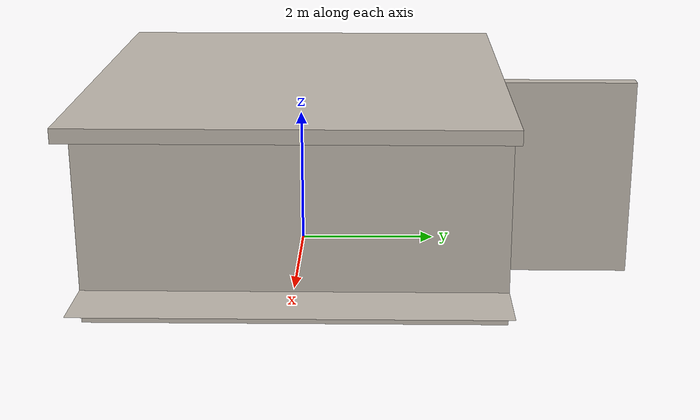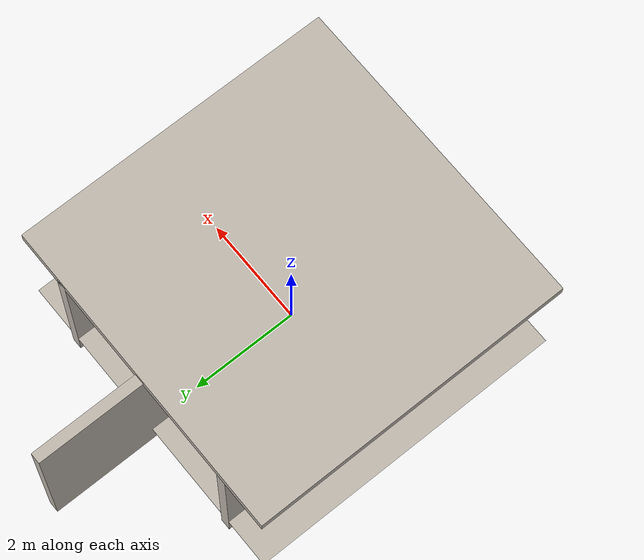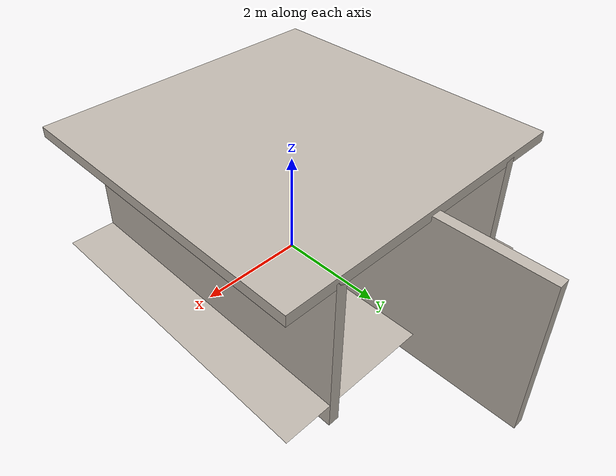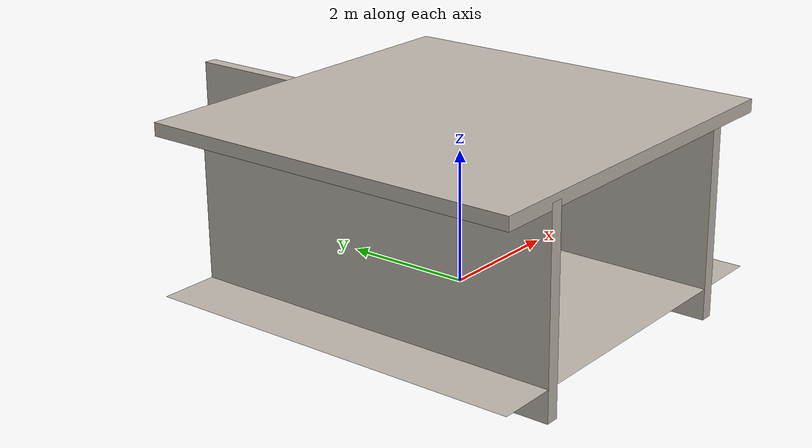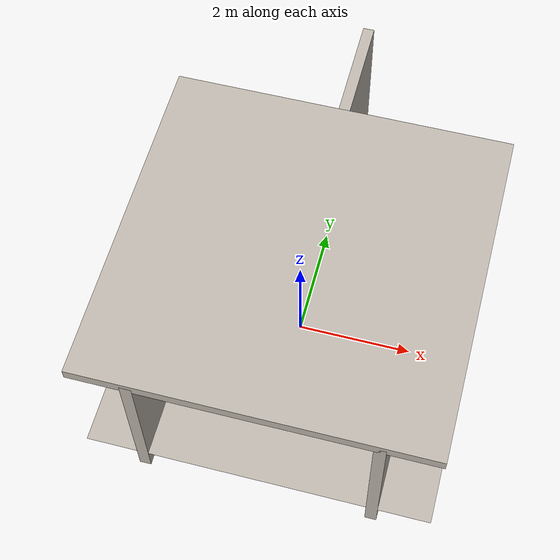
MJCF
<?xml version="1.0" encoding="UTF-8"?>
<mujoco model="piece_bbia">
  <compiler angle="radian" meshdir="../../assets/reachy_official"/>

  <asset>
    <!-- VOS TEXTURES PROCREATE (modifier chemins selon vos fichiers) -->
    <texture name="texture_mur" type="2d" file="../../../assets/textures/mur.png"/>
    <texture name="texture_sol" type="2d" file="../../../assets/textures/sol.png"/>
    <texture name="texture_plafond" type="2d" file="../../../assets/textures/plafond.png"/>

    <!-- Matériaux utilisant vos textures -->
    <material name="mat_mur" texture="texture_mur"/>
    <material name="mat_sol" texture="texture_sol"/>
    <material name="mat_plafond" texture="texture_plafond"/>

    <!-- Skybox BBIA (fond d'environnement) -->
    <texture name="skybox_bbia" type="skybox" builtin="gradient"
             rgb1="0.92 0.92 0.93" rgb2="0.53 0.74 0.98" width="512" height="512"/>
  </asset>

  <worldbody>
    <!-- Sol avec votre texture -->
    <geom name="sol" type="plane" size="3 3 0.1" material="mat_sol" pos="0 0 0"
          contype="1" conaffinity="1"/>

    <!-- Murs de la pièce (4 murs) -->
    <!-- Mur fond (arrière) -->
    <body name="mur_fond" pos="0 2 1">
      <geom type="box" size="0.1 3 1.5" material="mat_mur" contype="0" conaffinity="0"/>
    </body>

    <!-- Mur gauche -->
    <body name="mur_gauche" pos="-2 0 1">
      <geom type="box" size="0.1 3 1.5" material="mat_mur" contype="0" conaffinity="0"/>
    </body>

    <!-- Mur droite -->
    <body name="mur_droite" pos="2 0 1">
      <geom type="box" size="0.1 3 1.5" material="mat_mur" contype="0" conaffinity="0"/>
    </body>

    <!-- Mur avant (devant robot, optionnel avec ouverture) -->
    <!-- Commenté par défaut pour voir le robot -->

    <!-- Plafond -->
    <body name="plafond" pos="0 0 2.5">
      <geom type="box" size="3 3 0.1" material="mat_plafond" contype="0" conaffinity="0"/>
    </body>

    <!-- Bureau blanc (sur lequel repose le robot) -->
    <body name="bureau_bbia" pos="0 0 0.16">
      <geom name="pied_1" type="cylinder" size="0.01 0.075" pos="-0.35 -0.25 0.075"
            rgba="1.0 1.0 1.0 1.0" contype="1" conaffinity="1"/>
      <geom name="pied_2" type="cylinder" size="0.01 0.075" pos="0.35 -0.25 0.075"
            rgba="1.0 1.0 1.0 1.0" contype="1" conaffinity="1"/>
      <geom name="pied_3" type="cylinder" size="0.01 0.075" pos="-0.35 0.25 0.075"
            rgba="1.0 1.0 1.0 1.0" contype="1" conaffinity="1"/>
      <geom name="pied_4" type="cylinder" size="0.01 0.075" pos="0.35 0.25 0.075"
            rgba="1.0 1.0 1.0 1.0" contype="1" conaffinity="1"/>
      <geom name="tabletop" type="box" size="0.4 0.3 0.01" pos="0 0 0.16"
            rgba="1.0 1.0 1.0 1.0" contype="1" conaffinity="1"/>
    </body>

    <!-- Robot Reachy Mini (inclu depuis modèle principal) -->
    <include file="../models/reachy_mini_REAL_OFFICIAL.xml"/>

    <!-- Éclairage -->
    <light pos="0 0 3" dir="0 0 -1" diffuse="0.8 0.8 0.8"/>
    <light pos="2 2 2" dir="-1 -1 -1" diffuse="0.4 0.4 0.4"/>
  </worldbody>
</mujoco>
